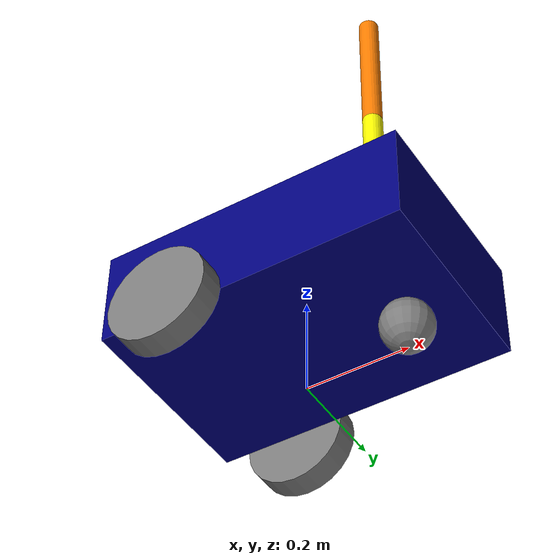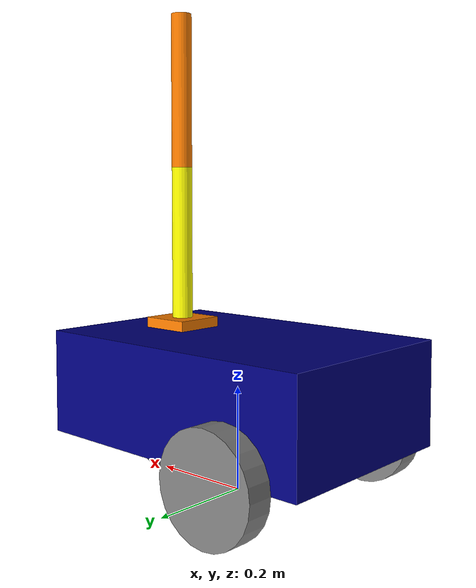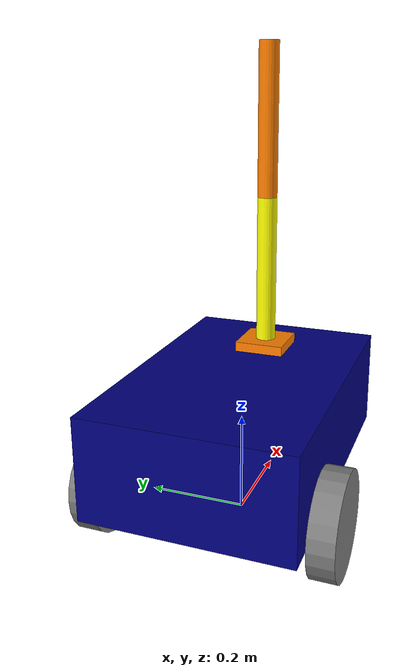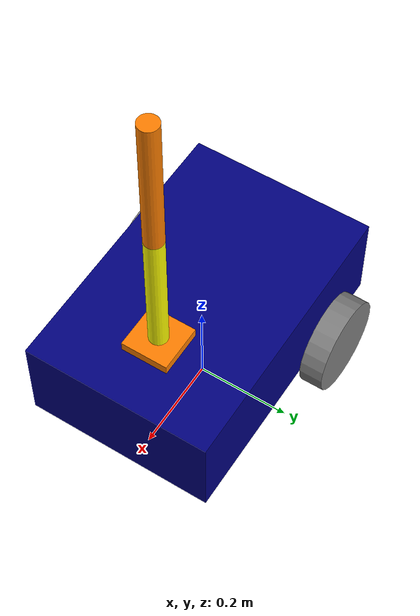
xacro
<?xml version="1.0"?>
<robot name="my_robot" xmlns:xacro="http://www.ros.org/wiki/xacro">

    <xacro:include filename="common_properties.xacro" />
    <xacro:include filename="mobile_base.xacro" />
    <xacro:include filename="arm.xacro" />

    <joint name="mobile_base_arm_joint" type="fixed">
        <parent link="base_link" />
        <child link="arm_base_link" />
        <origin xyz="${base_length/4.0} 0 ${base_height}" rpy="0 0 0" />
    </joint>

    <gazebo reference="caster_wheel_link">
        <mu1 value="0.1" />
        <mu2 value="0.1" />
    </gazebo>

    <ros2_control name="MyRobot" type="system">
        <hardware>
            <plugin>gz_ros2_control/GazeboSimSystem</plugin>
        </hardware>
        <joint name="base_right_wheel_joint">
            <command_interface name="velocity" />
            <state_interface name="position" />
            <state_interface name="velocity" />
        </joint>
        <joint name="base_left_wheel_joint">
            <command_interface name="velocity" />
            <state_interface name="position" />
            <state_interface name="velocity" />
        </joint>
        <joint name="arm_joint1">
            <command_interface name="position" />
            <state_interface name="position" />
        </joint>
        <joint name="arm_joint2">
            <command_interface name="position" />
            <state_interface name="position" />
        </joint>
    </ros2_control>

    <gazebo>
        <plugin filename="gz_ros2_control-system" name="gz_ros2_control::GazeboSimROS2ControlPlugin">
            <parameters>$(find my_robot_bringup)/config/my_robot_controllers.yaml</parameters>
        </plugin>
    </gazebo>
</robot>

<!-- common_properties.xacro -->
<robot xmlns:xacro="http://www.ros.org/wiki/xacro">

    <material name="blue">
        <color rgba="0.0 0.0 0.5 1.0"/>
    </material>

    <material name="grey">
        <color rgba="0.5 0.5 0.5 1.0"/>
    </material>

    <material name="orange">
        <color rgba="1 0.5 0 1" />
    </material>

    <material name="yellow">
        <color rgba="1 1 0 1" />
    </material>

    <xacro:macro name="box_inertia" params="m x y z o_xyz o_rpy">
        <inertial>
            <mass value="${m}" />
            <origin xyz="${o_xyz}" rpy="${o_rpy}" />
            <inertia ixx="${(m/12) * (y*y + z*z)}" ixy="0" ixz="0"
                     iyy="${(m/12) * (x*x + z*z)}" iyz="0"
                     izz="${(m/12) * (x*x + y*y)}" />
        </inertial>
    </xacro:macro>

    <xacro:macro name="cylinder_inertia" params="m r l o_xyz o_rpy">
        <inertial>
            <mass value="${m}" />
            <origin xyz="${o_xyz}" rpy="${o_rpy}" />
            <inertia ixx="${(m/12) * (3*r*r + l*l)}" ixy="0" ixz="0"
                     iyy="${(m/12) * (3*r*r + l*l)}" iyz="0"
                     izz="${(m/2) * (r*r)}" />

        </inertial>
    </xacro:macro>

    <xacro:macro name="sphere_inertia" params="m r o_xyz o_rpy">
        <inertial>
            <mass value="${m}" />
            <origin xyz="${o_xyz}" rpy="${o_rpy}" />
            <inertia ixx="${(2/5) *m *r *r}" ixy="0" ixz="0"
                     iyy="${(2/5) * m * r * r}" iyz="0"
                     izz="${(2/5) * m * r * r}" />
        </inertial>
    </xacro:macro>
</robot>

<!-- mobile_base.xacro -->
<robot xmlns:xacro="http://www.ros.org/wiki/xacro">

    <xacro:property name="base_length" value="0.6" />
    <xacro:property name="base_width" value="0.4" />
    <xacro:property name="base_height" value="0.2" />
    <xacro:property name="wheel_radius" value="0.1" />
    <xacro:property name="wheel_length" value="0.05" />

    <link name="base_footprint" />

    <link name="base_link">
        <visual>
            <geometry>
                <box size="${base_length} ${base_width} ${base_height}" />
            </geometry>
            <origin xyz="0.0 0.0 ${base_height / 2.0}" rpy="0.0 0.0 0.0" />
            <material name="blue" />
        </visual>
        <collision>
            <geometry>
                <box size="${base_length} ${base_width} ${base_height}" />
            </geometry>
            <origin xyz="0 0 ${base_height / 2.0}" rpy="0 0 0" />
        </collision>
        <xacro:box_inertia m="5.0" x="${base_length}" y="${base_width}" z="${base_height}"
                        o_xyz="0 0 ${base_height / 2.0}" o_rpy="0 0 0"/>
    </link>

    <xacro:macro name="wheel_link" params="prefix">
        <link name="${prefix}_wheel_link">
            <visual>
                <geometry>
                    <cylinder radius="${wheel_radius}" length="${wheel_length}" />
                </geometry>
                <origin xyz="0.0 0.0 0.0" rpy="${pi / 2.0} 0.0 0.0" />
                <material name="grey" />
            </visual>
            <collision>
                <geometry>
                    <sphere radius="${wheel_radius}" />
                </geometry>
                <origin xyz="0 0 0" rpy="0 0 0" />
            </collision>
            <xacro:cylinder_inertia m="1.0" r="${wheel_radius}" l="${wheel_length}"
                                    o_xyz="0 0 0" o_rpy="${pi /2.0} 0 0"/>
        </link>
    </xacro:macro>

    <xacro:wheel_link prefix="right" />
    <xacro:wheel_link prefix="left" />

    <link name="caster_wheel_link">
        <visual>
            <geometry>
                <sphere radius="${wheel_radius / 2.0}" />
            </geometry>
            <origin xyz="0.0 0.0 0.0" rpy="0.0 0.0 0.0" />
            <material name="grey" />
        </visual>
        <collision>
            <geometry>
                <sphere radius="${wheel_radius / 2.0}" />
            </geometry>
            <origin xyz="0 0 0" rpy="0 0 0" />
        </collision>
        <xacro:sphere_inertia m="0.5" r="${wheel_radius / 2.0}"
                              o_xyz="0 0 0" o_rpy="0 0 0"/>
    </link>

    <joint name="base_joint" type="fixed">
        <parent link="base_footprint" />
        <child link="base_link" />
        <origin xyz="0.0 0.0 ${wheel_radius}" rpy="0.0 0.0 0.0" />
    </joint>

    <joint name="base_right_wheel_joint" type="continuous">
        <parent link="base_link" />
        <child link="right_wheel_link" />
        <origin xyz="${-base_length / 4.0} ${-(base_width + wheel_length) / 2.0} 0.0" rpy="0.0 0.0 0.0" />
        <axis xyz="0 1 0" />
    </joint>

    <joint name="base_left_wheel_joint" type="continuous">
        <parent link="base_link" />
        <child link="left_wheel_link" />
        <origin xyz="${-base_length / 4.0} ${(base_width + wheel_length) / 2.0} 0.0" rpy="0.0 0.0 0.0" />
        <axis xyz="0 1 0" />
    </joint>

    <joint name="base_caster_wheel_joint" type="fixed">
        <parent link="base_link" />
        <child link="caster_wheel_link" />
        <origin xyz="${base_length / 3.0} 0.0 ${-wheel_radius / 2.0}" rpy="0.0 0.0 0.0" />
    </joint>

</robot>

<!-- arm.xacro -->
<robot xmlns:xacro="http://www.ros.org/wiki/xacro">

    <xacro:property name="arm_base_length" value="0.1" />
    <xacro:property name="arm_base_width" value="0.1" />
    <xacro:property name="arm_base_height" value="0.02" />
    <xacro:property name="forearm_radius" value="0.02" />
    <xacro:property name="forearm_length" value="0.3" />
    <xacro:property name="hand_radius" value="0.02" />
    <xacro:property name="hand_length" value="0.3" />

    <link name="arm_base_link">
        <visual>
            <geometry>
                <box size="${arm_base_length} ${arm_base_width} ${arm_base_height}" />
            </geometry>
            <origin xyz="0 0 ${arm_base_height / 2.0}" rpy="0 0 0"/>
            <material name="orange" />
        </visual>
        <collision>
            <geometry>
                <box size="${arm_base_length} ${arm_base_width} ${arm_base_height}" />
            </geometry>
            <origin xyz="0 0 ${arm_base_height / 2.0}" rpy="0 0 0"/>
        </collision>
        <xacro:box_inertia m="0.5" x="${arm_base_length}" y="${arm_base_width}" z="${arm_base_height}"
                            o_xyz="0 0 ${arm_base_height / 2.0}" o_rpy="0 0 0"/>
    </link>

    <link name="forearm_link">
        <visual>
            <geometry>
                <cylinder radius="${forearm_radius}" length="${forearm_length}" />
            </geometry>
            <origin xyz="0 0 ${forearm_length / 2.0}" rpy="0 0 0"/>
            <material name="yellow" />
        </visual>
        <collision>
            <geometry>
                <cylinder radius="${forearm_radius}" length="${forearm_length}" />
            </geometry>
            <origin xyz="0 0 ${forearm_length / 2.0}" rpy="0 0 0"/>
        </collision>
        <xacro:cylinder_inertia m="0.3" r="${forearm_radius}" l="${forearm_length}"
                                o_xyz="0 0 ${forearm_length / 2.0}" o_rpy="0 0 0"/>
    </link>

    <link name="hand_link">
        <visual>
            <geometry>
                <cylinder radius="${hand_radius}" length="${hand_length}" />
            </geometry>
            <origin xyz="0 0 ${hand_length / 2.0}" rpy="0 0 0"/>
            <material name="orange" />
        </visual>
        <collision>
            <geometry>
                <cylinder radius="${hand_radius}" length="${hand_length}" />
            </geometry>
            <origin xyz="0 0 ${hand_length / 2.0}" rpy="0 0 0"/>
        </collision>
        <xacro:cylinder_inertia m="0.3" r="${hand_radius}" l="${hand_length}"
                                o_xyz="0 0 ${hand_length / 2.0}" o_rpy="0 0 0"/>
    </link>

    <joint name="arm_joint1" type="revolute">
        <parent link="arm_base_link" />
        <child link="forearm_link" />
        <origin xyz="0 0 ${arm_base_height}" rpy="0 0 0"/>
        <axis xyz="0 1 0" />
        <limit lower="0" upper="${pi/ 2}" effort="100" velocity="100" />
        <dynamics friction="0.05" damping="0.1" />
    </joint>

    <joint name="arm_joint2" type="revolute">
        <parent link="forearm_link" />
        <child link="hand_link" />
        <origin xyz="0 0 ${forearm_length}" rpy="0 0 0"/>
        <axis xyz="0 1 0" />
        <limit lower="0" upper="${pi/ 2}" effort="100"  velocity="100" />
        <dynamics friction="0.05" damping="0.1" />
    </joint>

</robot>
